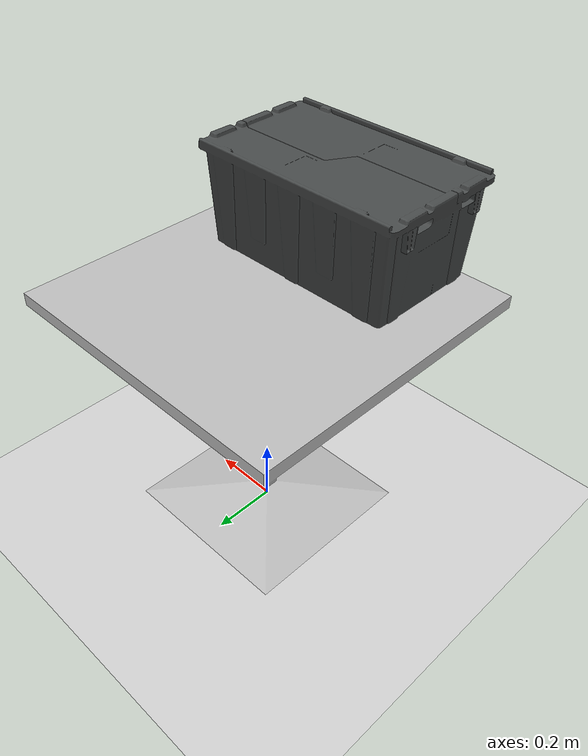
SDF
<sdf version="1.7">
 <world name="default">
  <scene>
   <sky><clouds><speed>12</speed></clouds></sky>
   <ambient>0.4 0.4 0.4 1</ambient>
   <background>0.7 0.7 0.7 1</background>
   <shadows>1</shadows>
  </scene>
  <light name="sun" type="directional">
   <pose>0 0 10 0 -0 0</pose>
   <diffuse>0.8 0.8 0.8 1</diffuse>
   <specular>0.2 0.2 0.2 1</specular>
   <attenuation>
    <range>1000</range>
    <constant>0.9</constant>
    <linear>0.01</linear>
    <quadratic>0.001</quadratic>
   </attenuation>
   <direction>-0.5 0.1 -0.9</direction>
   <spot><inner_angle>0</inner_angle><outer_angle>0</outer_angle><falloff>0</falloff></spot>
  </light>
  <model name="ground_plane">
   <static>1</static>
   <link name="link">
    <collision name="collision">
     <geometry><plane><normal>0 0 1</normal><size>100 100</size></plane></geometry>
     <surface><friction><ode><mu>100</mu><mu2>50</mu2></ode></friction></surface>
    </collision>
    <visual name="visual">
     <cast_shadows>0</cast_shadows>
     <geometry><plane><normal>0 0 1</normal><size>100 100</size></plane></geometry>
     <material>
      <script><uri>file://media/materials/scripts/gazebo.material</uri><name>Gazebo/Grey</name></script>
     </material>
    </visual>
   </link>
  </model>
  <gravity>0 0 -9.8</gravity>
  <magnetic_field>6e-06 2.3e-05 -4.2e-05</magnetic_field>
  <atmosphere type="adiabatic"/>
  <physics type="ode">
   <max_step_size>0.001</max_step_size>
   <real_time_factor>1</real_time_factor>
   <real_time_update_rate>1000</real_time_update_rate>
  </physics>
  <spherical_coordinates>
   <surface_model>EARTH_WGS84</surface_model>
   <latitude_deg>0</latitude_deg>
   <longitude_deg>0</longitude_deg>
   <elevation>0</elevation>
   <heading_deg>0</heading_deg>
  </spherical_coordinates>
  <model name="cafe_table">
   <static>1</static>
   <link name="link">
    <collision name="surface">
     <pose>0 0 0.755 0 -0 0</pose>
     <geometry><box><size>0.913 0.913 0.04</size></box></geometry>
    </collision>
    <collision name="column">
     <pose>0 0 0.37 0 -0 0</pose>
     <geometry><box><size>0.042 0.042 0.74</size></box></geometry>
    </collision>
    <collision name="base">
     <pose>0 0 0.02 0 -0 0</pose>
     <geometry><box><size>0.56 0.56 0.04</size></box></geometry>
    </collision>
    <visual name="visual">
     <geometry><mesh><uri>model://cafe_table/meshes/cafe_table.dae</uri></mesh></geometry>
    </visual>
   </link>
  </model>
  <model name="grey_tote">
   <link name="link">
    <inertial>
     <pose>0 0 0.14155 0 -0 0</pose>
     <mass>3.53802</mass>
     <inertia>
      <ixx>0.0688358</ixx>
      <ixy>0</ixy>
      <ixz>0</ixz>
      <iyy>0.139596</iyy>
      <iyz>0</iyz>
      <izz>0.155909</izz>
     </inertia>
    </inertial>
    <collision name="lid">
     <pose>0 0 0.28958 0 -0 0</pose>
     <geometry><box><size>0.67768 0.41298 0.01588</size></box></geometry>
    </collision>
    <collision name="lid_lip_1">
     <pose>0 0.20063 0.3048 0 -0 0</pose>
     <geometry><box><size>0.65068 0.0105 0.0127</size></box></geometry>
    </collision>
    <collision name="lid_lip_2">
     <pose>0 -0.20063 0.3048 0 -0 0</pose>
     <geometry><box><size>0.65068 0.0105 0.0127</size></box></geometry>
    </collision>
    <collision name="lid_lip_3">
     <pose>0.32585 0 0.3048 0 -0 0</pose>
     <geometry><box><size>0.02602 0.31202 0.0127</size></box></geometry>
    </collision>
    <collision name="lid_lip_4">
     <pose>-0.32585 0 0.3048 0 -0 0</pose>
     <geometry><box><size>0.02602 0.31202 0.0127</size></box></geometry>
    </collision>
    <collision name="side_wall_1">
     <pose>0 -0.18 0.14155 0.061147 -0 0</pose>
     <geometry><box><size>0.58404 0.02602 0.283099</size></box></geometry>
    </collision>
    <collision name="side_wall_2">
     <pose>0 0.18 0.14155 -0.061147 0 0</pose>
     <geometry><box><size>0.58404 0.02602 0.283099</size></box></geometry>
    </collision>
    <collision name="side_wall_3">
     <pose>0.305 0 0.14155 0 0.061147 0</pose>
     <geometry><box><size>0.02602 0.33046 0.283099</size></box></geometry>
    </collision>
    <collision name="side_wall_4">
     <pose>-0.305 0 0.14155 0 -0.061147 0</pose>
     <geometry><box><size>0.02602 0.33046 0.283099</size></box></geometry>
    </collision>
    <collision name="bottom">
     <pose>0 0 0.01 0 -0 0</pose>
     <geometry><box><size>0.58404 0.33046 0.02</size></box></geometry>
    </collision>
    <collision name="corner_1">
     <pose>0.30202 -0.175 0.14155 0.061147 0.061147 -0</pose>
     <geometry><cylinder><radius>0.01268</radius><length>0.283099</length></cylinder></geometry>
    </collision>
    <collision name="corner_2">
     <pose>-0.30202 -0.175 0.14155 0.061147 -0.061147 0</pose>
     <geometry><cylinder><radius>0.01268</radius><length>0.283099</length></cylinder></geometry>
    </collision>
    <collision name="corner_3">
     <pose>-0.30202 0.175 0.14155 -0.061147 -0.061147 -0</pose>
     <geometry><cylinder><radius>0.01268</radius><length>0.283099</length></cylinder></geometry>
    </collision>
    <collision name="corner_4">
     <pose>0.30202 0.175 0.14155 -0.061147 0.061147 0</pose>
     <geometry><cylinder><radius>0.01268</radius><length>0.283099</length></cylinder></geometry>
    </collision>
    <visual name="visual"><geometry><mesh><uri>model://grey_tote/meshes/tote.dae</uri></mesh></geometry></visual>
   </link>
   <pose>-1e-06 -0.269988 0.775561 -1.5e-05 8e-06 -2.3e-05</pose>
  </model>
  <light name="user_point_light_0" type="point">
   <pose>-0.034186 -0.622255 1 0 -0 0</pose>
   <diffuse>0.5 0.5 0.5 1</diffuse>
   <specular>0.1 0.1 0.1 1</specular>
   <attenuation>
    <range>20</range>
    <constant>0.5</constant>
    <linear>0.01</linear>
    <quadratic>0.001</quadratic>
   </attenuation>
   <cast_shadows>0</cast_shadows>
   <direction>0 0 -1</direction>
  </light>
 </world>
</sdf>
